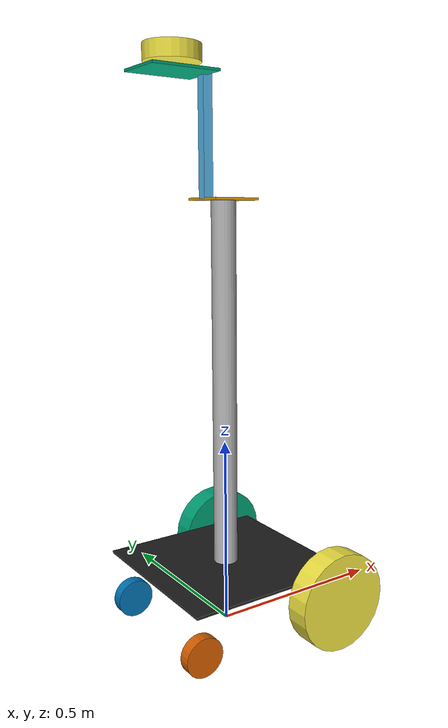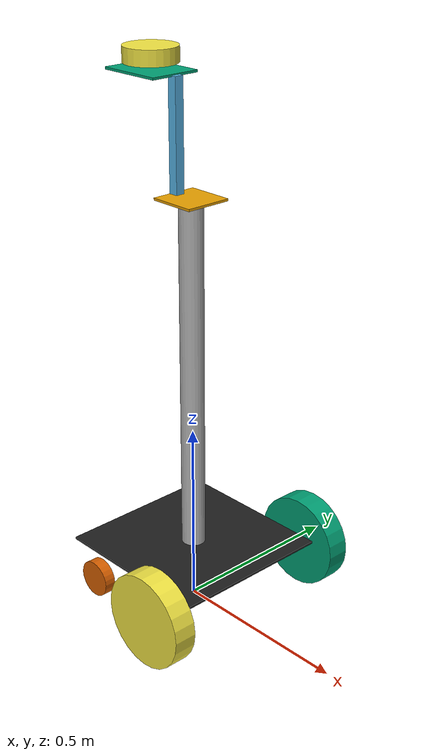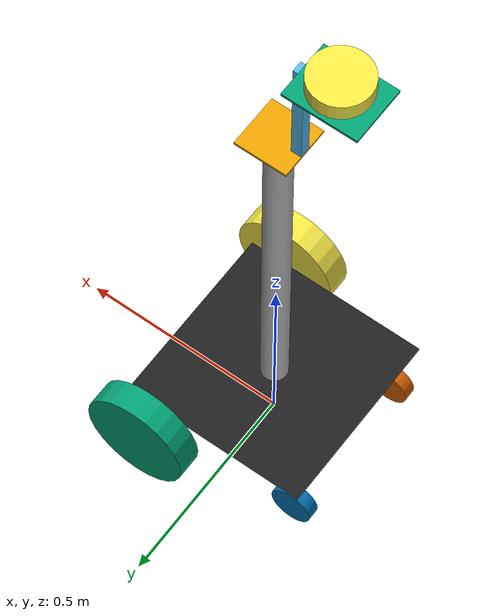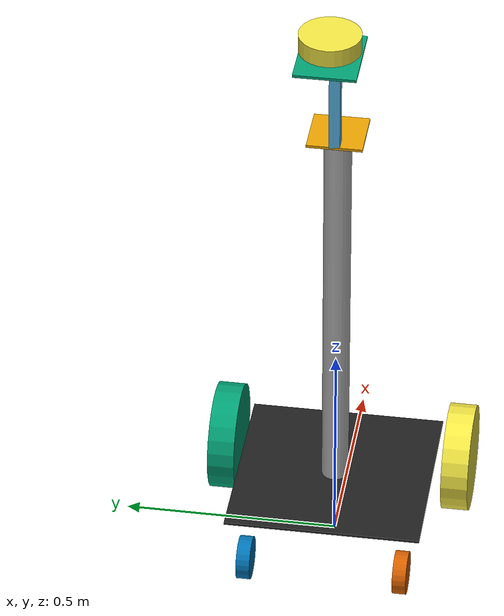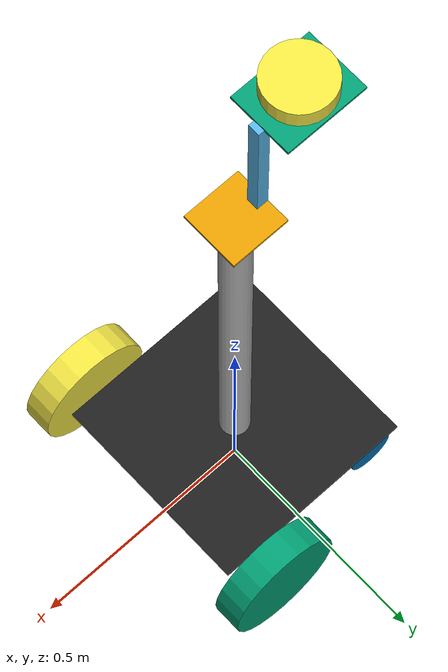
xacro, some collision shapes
<?xml version="1.0" ?>
<robot name="turtlebot3_burger" xmlns:xacro="http://ros.org/wiki/xacro">
  <xacro:include filename="$(find turtlebot3_description)/urdf/common_properties.xacro"/>

  <link name="base_footprint"/>

  <joint name="base_joint" type="fixed">
    <parent link="base_footprint"/>
    <child link="base_link"/>
    <origin xyz="0.1524 0.0 .1651" rpy="0 0 0"/>
  </joint>

  <link name="base_link">
    <visual>
      <origin xyz="-0.1524 0 0.0" rpy="0 0 0"/>
      <geometry>
	<box size="0.4572 0.4572 0.00635"/>
      </geometry>
      <material name="light_black"/>
    </visual>

    <collision>
      <origin xyz="-0.1524 0 0" rpy="0 0 0"/>
      <geometry>
        <box size="0.4572 0.4572 0.00635"/>
      </geometry>
    </collision>

    <inertial> <!-- update -->
      <origin xyz="-0.032 0 0" rpy="0 0 0"/>
      <mass value="1"/>
      <inertia ixx="0.01" ixy="0.0" ixz="0.0"
               iyy="0.01" iyz="0.0"
               izz="0.01" />
    </inertial>
  </link>

  <joint name="wheel_left_joint" type="continuous">
    <parent link="base_link"/>
    <child link="wheel_left_link"/>
    <origin xyz="0.0 0.2794 -0.0381" rpy="${-M_PI*0.5} 0 0"/>
    <axis xyz="0 0 1"/>
  </joint>

  <link name="wheel_left_link">
    <visual>
      <origin xyz="0 0 0" rpy="0 0 0"/>
      <geometry>
	<cylinder length="0.0635" radius="0.127"/>
      </geometry>
      <material name="dark"/>
    </visual>

    <collision>
      <origin xyz="0 0 0" rpy="0 0 0"/>
      <geometry>
        <cylinder length="0.0635" radius="0.127"/>
      </geometry>
    </collision>

    <inertial> <!-- update -->
      <origin xyz="0 0 0" />
      <mass value="3.742137" />
      <inertia ixx="0.016347" ixy="0.0" ixz="0.0"
               iyy="0.016347" iyz="0.0"
               izz="0.030178" />
    </inertial>
  </link>

  <joint name="wheel_right_joint" type="continuous">
    <parent link="base_link"/>
    <child link="wheel_right_link"/>
    <origin xyz="0.0 -0.2794 -0.0381" rpy="${-M_PI*0.5} 0 0"/>
    <axis xyz="0 0 1"/>
  </joint>

  <link name="wheel_right_link">
    <visual>
      <origin xyz="0 0 0" rpy="0 0 0"/>
      <geometry>
	<cylinder length="0.0635" radius="0.127"/>
      </geometry>
      <material name="dark"/>
    </visual>

    <collision>
      <origin xyz="0 0 0" rpy="0 0 0"/>
      <geometry>
        <cylinder length="0.0635" radius="0.127"/>
      </geometry>
    </collision>

    <inertial> <!-- update 8.25lb wheel -->
      <origin xyz="0 0 0" />
      <mass value="3.742137" />
      <inertia ixx="0.016347" ixy="0.0" ixz="0.0"
               iyy="0.016347" iyz="0.0"
               izz="0.030178" />
    </inertial>
  </link>

  <joint name="caster_back_left_joint" type="fixed">
    <parent link="base_link"/>
    <child link="caster_back_left_link"/>
    <origin xyz="${-0.1905-0.1524} 0.18415 -0.127" rpy="${-M_PI*0.5} 0 0"/>
  </joint>

  <link name="caster_back_left_link">

    <visual>
      <origin xyz="0 0 0" rpy="0 0 0"/>
      <geometry>
	<cylinder length="0.03175" radius="0.0508"/>
      </geometry>
      <material name="dark"/>
    </visual>
    <collision>
      <origin xyz="0 0 0" rpy="0 0 0"/>
      <geometry>
	<cylinder length="0.03175" radius="0.0508"/>
      </geometry>
    </collision>

    <inertial>
      <origin xyz="0 0 0" />
      <mass value="0.01" />
      <inertia ixx="0.001" ixy="0.0" ixz="0.0"
               iyy="0.001" iyz="0.0"
               izz="0.001" />
    </inertial>
  </link>

<joint name="caster_back_right_joint" type="fixed">
    <parent link="base_link"/>
    <child link="caster_back_right_link"/>
    <origin xyz="${-0.1905-0.1524} -0.18415 -0.127" rpy="${-M_PI*0.5} 0 0"/>
  </joint>

  <link name="caster_back_right_link">

    <visual>
      <origin xyz="0 0 0" rpy="0 0 0"/>
      <geometry>
	<cylinder length="0.03175" radius="0.0508"/>
      </geometry>
      <material name="dark"/>
    </visual>
    <collision>
      <origin xyz="0 0 0" rpy="0 0 0"/>
      <geometry>
	<cylinder length="0.03175" radius="0.0508"/>
      </geometry>
    </collision>

    <inertial>
      <origin xyz="0 0 0" />
      <mass value="0.01" />
      <inertia ixx="0.001" ixy="0.0" ixz="0.0"
               iyy="0.001" iyz="0.0"
               izz="0.001" />
    </inertial>
  </link>

  <joint name="imu_joint" type="fixed">
    <parent link="base_link"/>
    <child link="imu_link"/>
    <origin xyz="0 0.0254 0" rpy="0 0 ${-M_PI*0.25}"/>
  </joint>

  <link name="imu_link"/>

  <joint name="center_post_joint" type="fixed">
    <parent link="base_footprint"/>
    <child link="center_post_link"/>
    <origin xyz="0.0 0 .1651" rpy="0 0 0"/>

  </joint>

  <link name="center_post_link">
    <visual>
      <origin xyz="0 0 ${(0.9652/2)}" rpy="0 0 0"/>
      <geometry>
	<cylinder length="0.9652" radius="0.03175"/>

      </geometry>
      <material name="dark"/>
    </visual>

    <collision>
      <origin xyz="0 0 ${(0.9652/2)}" rpy="0 0 0"/>
      <geometry>
        <cylinder length="0.9652" radius="0.03175"/>
      </geometry>
    </collision>

    <inertial> <!-- update -->
      <origin xyz="0 0 0" />
      <mass value="0.01" />
      <inertia ixx="0.001" ixy="0.0" ixz="0.0"
               iyy="0.001" iyz="0.0"
               izz="0.001" />
    </inertial>
  </link>

 <joint name="center_post_top_joint" type="fixed">
    <parent link="base_footprint"/>
    <child link="center_post_top_link"/>
    <origin xyz="0.0 0 ${.1651+0.9652}" rpy="0 0 0"/>

  </joint>

  <link name="center_post_top_link">
    <visual>
      <origin xyz="0 0 0" rpy="0 0 0"/>
      <geometry>
	<box size="0.127 0.127 0.00635"/>
      </geometry>
      <material name="dark"/>
    </visual>

    <collision>
      <origin xyz="0 0 0" rpy="0 0 0"/>
      <geometry>
        <box size="0.127 0.127 0.00635"/>
      </geometry>
    </collision>

    <inertial> <!-- update -->
      <origin xyz="0 0 0" />
      <mass value="0.01" />
      <inertia ixx="0.001" ixy="0.0" ixz="0.0"
               iyy="0.001" iyz="0.0"
               izz="0.001" />
    </inertial>
  </link>

<joint name="lidar_post_joint" type="fixed">
    <parent link="center_post_top_link"/>
    <child link="lidar_post_link"/>
    <origin xyz="-0.0508 0 ${0.2921/2}" rpy="0 0 0"/>

  </joint>

  <link name="lidar_post_link">
    <visual>
      <origin xyz="0 0 0" rpy="0 0 0"/>
      <geometry>
	<box size="0.0254 0.0254 0.2921"/>
      </geometry>
      <material name="dark"/>
    </visual>

    <collision>
      <origin xyz="0 0 0" rpy="0 0 0"/>
      <geometry>
        <box size="0.0254 0.0254 0.2921"/>
      </geometry>
    </collision>

    <inertial> <!-- update -->
      <origin xyz="0 0 0" />
      <mass value="0.01" />
      <inertia ixx="0.001" ixy="0.0" ixz="0.0"
               iyy="0.001" iyz="0.0"
               izz="0.001" />
    </inertial>
  </link>

<joint name="lidar_base_joint" type="fixed">
    <parent link="lidar_post_link"/>
    <child link="lidar_base_link"/>
    <origin xyz="${-0.1778/2} 0 ${0.2921/2}" rpy="0 0 0"/>

  </joint>

  <link name="lidar_base_link">
    <visual>
      <origin xyz="0 0 0" rpy="0 0 0"/>
      <geometry>
	<box size="0.1778 0.1397 0.00635"/>
      </geometry>
      <material name="dark"/>
    </visual>

    <collision>
      <origin xyz="0 0 0" rpy="0 0 0"/>
      <geometry>
        <box size="0.1778 0.1397 0.00635"/>
      </geometry>
    </collision>

    <inertial> <!-- update -->
      <origin xyz="0 0 0" />
      <mass value="0.01" />
      <inertia ixx="0.001" ixy="0.0" ixz="0.0"
               iyy="0.001" iyz="0.0"
               izz="0.001" />
    </inertial>
  </link>

  <joint name="scan_joint" type="fixed">
    <parent link="lidar_base_link"/>
    <child link="base_scan"/>
    <origin xyz="0 0 0.0381" rpy="0 0 ${-M_PI}"/>
  </joint>

  <link name="base_scan">
    <visual>
      <origin xyz="0 0 0.0" rpy="0 0 0"/>
      <geometry>
        <mesh filename="package://turtlebot3_description/meshes/sensors/lds.stl" scale="0.001 0.001 0.001"/>
      </geometry>
      <material name="dark"/>
    </visual>

    <collision>
      <origin xyz="0 0 0" rpy="0 0 0"/>
      <geometry>
        <cylinder length="0.0408" radius="0.070"/>
      </geometry>
    </collision>

    <inertial>
      <mass value="0.01" />
      <origin xyz="0 0 0" />
      <inertia ixx="0.001" ixy="0.0" ixz="0.0"
               iyy="0.001" iyz="0.0"
               izz="0.001" />
    </inertial>
  </link>

</robot>
